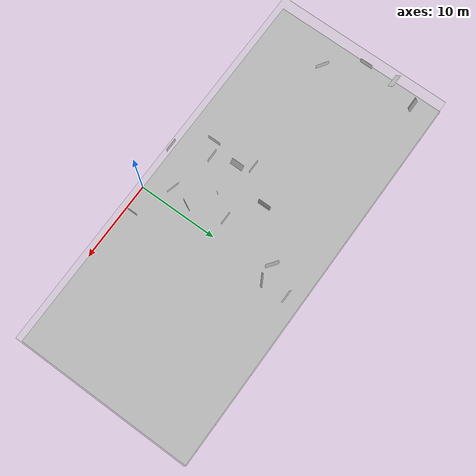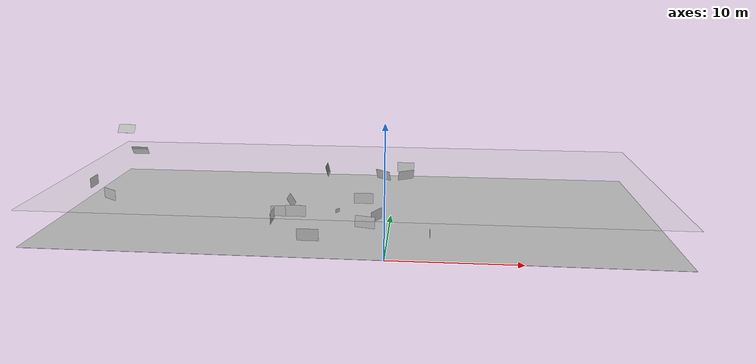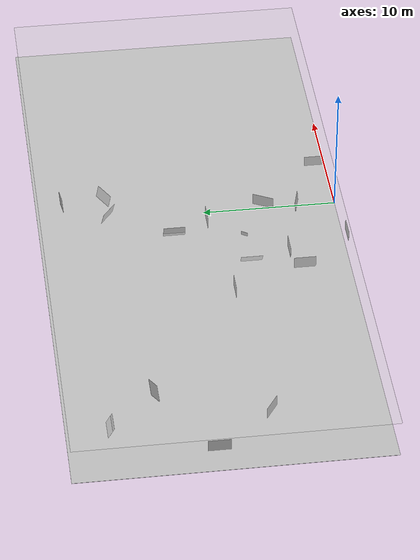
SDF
<sdf version="1.6">
 <world name="default">
  <model name="ceiling">
   <pose>-2.97 11.25 3 3.14159 -0 3.14159</pose>
   <static>1</static>
   <link name="link">
    <visual name="visual">
     <geometry><plane><normal>0 0 1</normal><size>49.5 22.5</size></plane></geometry>
     <material>
      <script>
       <uri>file://media/materials/scripts/</uri>
       <uri>file://media/materials/textures/</uri>
       <name>ServiceSim/Ceiling</name>
      </script>
     </material>
    </visual>
   </link>
  </model>
  <model name="floor">
   <pose>-2.97 11.25 -0.001 0 -0 0</pose>
   <static>1</static>
   <link name="link">
    <collision name="collision">
     <geometry><plane><normal>0 0 1</normal><size>49.5 22.5</size></plane></geometry>
     <surface><friction><ode><mu>1</mu><mu2>1</mu2></ode></friction></surface>
    </collision>
    <visual name="visual">
     <geometry><plane><normal>0 0 1</normal><size>49.5 22.5</size></plane></geometry>
     <material>
      <script>
       <uri>file://media/materials/scripts/</uri>
       <uri>file://media/materials/textures/</uri>
       <name>ServiceSim/Hallway</name>
      </script>
     </material>
    </visual>
   </link>
  </model>
  <model name="slide-0">
   <pose>-1.666 3.158 1.31893 -0.0921 -0 -0.2639</pose>
   <static>1</static>
   <link name="link">
    <pose>0 0 0.45 0 -0 0</pose>
    <visual name="visual">
     <geometry><box><size>1.6 0.005 0.9</size></box></geometry>
     <material>
      <script>
       <uri>file://media/materials/scripts/</uri>
       <uri>file://media/materials/textures/</uri>
       <name>Slides/slide_0</name>
      </script>
     </material>
    </visual>
   </link>
  </model>
  <model name="slide-1">
   <pose>-7.17951 4.58217 1.57931 0 -0 0</pose>
   <static>1</static>
   <link name="link">
    <pose>0 0 0.45 0 -0 0</pose>
    <visual name="visual">
     <geometry><box><size>1.6 0.005 0.9</size></box></geometry>
     <material>
      <script>
       <uri>file://media/materials/scripts/</uri>
       <uri>file://media/materials/textures/</uri>
       <name>Slides/slide_1</name>
      </script>
     </material>
    </visual>
   </link>
  </model>
  <model name="slide-2">
   <pose>-8.84423 3.66479 1.425 0 -0 1.5708</pose>
   <static>1</static>
   <link name="link">
    <pose>0 0 0.45 0 -0 0</pose>
    <visual name="visual">
     <geometry><box><size>1.6 0.005 0.9</size></box></geometry>
     <material>
      <script>
       <uri>file://media/materials/scripts/</uri>
       <uri>file://media/materials/textures/</uri>
       <name>Slides/slide_2</name>
      </script>
     </material>
    </visual>
   </link>
  </model>
  <model name="slide-3">
   <pose>-5.53 0.01 1.34 0 0 3.14</pose>
   <static>1</static>
   <link name="link">
    <pose>0 0 0.45 0 -0 0</pose>
    <visual name="visual">
     <geometry><box><size>1.6 0.005 0.9</size></box></geometry>
     <material>
      <script>
       <uri>file://media/materials/scripts/</uri>
       <uri>file://media/materials/textures/</uri>
       <name>Slides/slide_3</name>
      </script>
     </material>
    </visual>
   </link>
  </model>
  <model name="slide-4">
   <pose>3.2438 1.11 1.23456 0 0 1.570796</pose>
   <static>1</static>
   <link name="link">
    <pose>0 0 0.405 0 -0 0</pose>
    <visual name="visual">
     <geometry><box><size>1.44 0.005 0.81</size></box></geometry>
     <material>
      <script>
       <uri>file://media/materials/scripts/</uri>
       <uri>file://media/materials/textures/</uri>
       <name>Slides/slide_4</name>
      </script>
     </material>
    </visual>
   </link>
  </model>
  <model name="slide-5">
   <pose>3.2438 1.11 1.23456 0 0 1.570796</pose>
   <static>1</static>
   <link name="link">
    <pose>0 0 0.405 0 -0 0</pose>
    <visual name="visual">
     <geometry><box><size>1.44 0.005 0.81</size></box></geometry>
     <material>
      <script>
       <uri>file://media/materials/scripts/</uri>
       <uri>file://media/materials/textures/</uri>
       <name>Slides/slide_5</name>
      </script>
     </material>
    </visual>
   </link>
  </model>
  <model name="slide-6">
   <pose>3.2438 1.11 1.23456 0 0 1.570796</pose>
   <static>1</static>
   <link name="link">
    <pose>0 0 0.405 0 -0 0</pose>
    <visual name="visual">
     <geometry><box><size>1.44 0.005 0.81</size></box></geometry>
     <material>
      <script>
       <uri>file://media/materials/scripts/</uri>
       <uri>file://media/materials/textures/</uri>
       <name>Slides/slide_6</name>
      </script>
     </material>
    </visual>
   </link>
  </model>
  <model name="slide-7">
   <pose>3.2438 1.11 1.23456 0 0 1.570796</pose>
   <static>1</static>
   <link name="link">
    <pose>0 0 0.405 0 -0 0</pose>
    <visual name="visual">
     <geometry><box><size>1.44 0.005 0.81</size></box></geometry>
     <material>
      <script>
       <uri>file://media/materials/scripts/</uri>
       <uri>file://media/materials/textures/</uri>
       <name>Slides/slide_7</name>
      </script>
     </material>
    </visual>
   </link>
  </model>
  <model name="slide-34">
   <pose>0.895 20.51 0.99 -0.25 0 0</pose>
   <static>1</static>
   <link name="link">
    <pose>0 0 0.45 0 -0 0</pose>
    <visual name="visual">
     <geometry><box><size>1.6 0.005 0.9</size></box></geometry>
     <material>
      <script>
       <uri>file://media/materials/scripts/</uri>
       <uri>file://media/materials/textures/</uri>
       <name>Slides/slide_34</name>
      </script>
     </material>
    </visual>
   </link>
  </model>
  <model name="slide-35">
   <pose>0.978 17.519 1.09 -0.25 0 -2.63</pose>
   <static>1</static>
   <link name="link">
    <pose>0 0 0.45 0 -0 0</pose>
    <visual name="visual">
     <geometry><box><size>1.6 0.005 0.9</size></box></geometry>
     <material>
      <script>
       <uri>file://media/materials/scripts/</uri>
       <uri>file://media/materials/textures/</uri>
       <name>Slides/slide_35</name>
      </script>
     </material>
    </visual>
   </link>
  </model>
  <model name="slide-36">
   <pose>-1.02 17.387 1.098 -0.257 0 2.51</pose>
   <static>1</static>
   <link name="link">
    <pose>0 0 0.45 0 -0 0</pose>
    <visual name="visual">
     <geometry><box><size>1.6 0.005 0.9</size></box></geometry>
     <material>
      <script>
       <uri>file://media/materials/scripts/</uri>
       <uri>file://media/materials/textures/</uri>
       <name>Slides/slide_36</name>
      </script>
     </material>
    </visual>
   </link>
  </model>
  <model name="slide-37">
   <pose>-5.6 12.866 2.69 -0.25 0 1.57</pose>
   <static>1</static>
   <link name="link">
    <pose>0 0 0.45 0 -0 0</pose>
    <visual name="visual">
     <geometry><box><size>1.6 0.005 0.9</size></box></geometry>
     <material>
      <script>
       <uri>file://media/materials/scripts/</uri>
       <uri>file://media/materials/textures/</uri>
       <name>Slides/slide_37</name>
      </script>
     </material>
    </visual>
   </link>
  </model>
  <model name="slide-38">
   <pose>-7.79 7.47 1.536 -0.55 0 1.57</pose>
   <static>1</static>
   <link name="link">
    <pose>0 0 0.45 0 -0 0</pose>
    <visual name="visual">
     <geometry><box><size>1.6 0.005 0.9</size></box></geometry>
     <material>
      <script>
       <uri>file://media/materials/scripts/</uri>
       <uri>file://media/materials/textures/</uri>
       <name>Slides/slide_38</name>
      </script>
     </material>
    </visual>
   </link>
  </model>
  <model name="slide-39">
   <pose>-9.29 8.86 0.08 0 0 3.14</pose>
   <static>1</static>
   <link name="link">
    <pose>0 0 0.45 0 -0 0</pose>
    <visual name="visual">
     <geometry><box><size>1.6 0.005 0.9</size></box></geometry>
     <material>
      <script>
       <uri>file://media/materials/scripts/</uri>
       <uri>file://media/materials/textures/</uri>
       <name>Slides/slide_39</name>
      </script>
     </material>
    </visual>
   </link>
  </model>
  <model name="slide-40">
   <pose>-23.76 8.29 1.33 0 0 2.55</pose>
   <static>1</static>
   <link name="link">
    <pose>0 0 0.45 0 -0 0</pose>
    <visual name="visual">
     <geometry><box><size>1.6 0.005 0.9</size></box></geometry>
     <material>
      <script>
       <uri>file://media/materials/scripts/</uri>
       <uri>file://media/materials/textures/</uri>
       <name>Slides/slide_40</name>
      </script>
     </material>
    </visual>
   </link>
  </model>
  <model name="slide-41">
   <pose>-23.76 8.29 1.33 0 0 2.55</pose>
   <static>1</static>
   <link name="link">
    <pose>0 0 0.45 0 -0 0</pose>
    <visual name="visual">
     <geometry><box><size>1.6 0.005 0.9</size></box></geometry>
     <material>
      <script>
       <uri>file://media/materials/scripts/</uri>
       <uri>file://media/materials/textures/</uri>
       <name>Slides/slide_41</name>
      </script>
     </material>
    </visual>
   </link>
  </model>
  <model name="slide-42">
   <pose>-23.76 8.29 1.33 0 0 2.55</pose>
   <static>1</static>
   <link name="link">
    <pose>0 0 0.45 0 -0 0</pose>
    <visual name="visual">
     <geometry><box><size>1.6 0.005 0.9</size></box></geometry>
     <material>
      <script>
       <uri>file://media/materials/scripts/</uri>
       <uri>file://media/materials/textures/</uri>
       <name>Slides/slide_42</name>
      </script>
     </material>
    </visual>
   </link>
  </model>
  <model name="slide-43">
   <pose>-23.76 8.29 1.33 0 0 2.55</pose>
   <static>1</static>
   <link name="link">
    <pose>0 0 0.45 0 -0 0</pose>
    <visual name="visual">
     <geometry><box><size>1.6 0.005 0.9</size></box></geometry>
     <material>
      <script>
       <uri>file://media/materials/scripts/</uri>
       <uri>file://media/materials/textures/</uri>
       <name>Slides/slide_43</name>
      </script>
     </material>
    </visual>
   </link>
  </model>
  <model name="slide-44">
   <pose>-26.94 12.32 1.2 0 0 1.57</pose>
   <static>1</static>
   <link name="link">
    <pose>0 0 0.45 0 -0 0</pose>
    <visual name="visual">
     <geometry><box><size>1.6 0.005 0.9</size></box></geometry>
     <material>
      <script>
       <uri>file://media/materials/scripts/</uri>
       <uri>file://media/materials/textures/</uri>
       <name>Slides/slide_44</name>
      </script>
     </material>
    </visual>
   </link>
  </model>
  <model name="slide-46">
   <pose>-25.33 19.81 2.38 -0.51 0 -3.14</pose>
   <static>1</static>
   <link name="link">
    <pose>0 0 0.45 0 -0 0</pose>
    <visual name="visual">
     <geometry><box><size>1.6 0.005 0.9</size></box></geometry>
     <material>
      <script>
       <uri>file://media/materials/scripts/</uri>
       <uri>file://media/materials/textures/</uri>
       <name>Slides/slide_46</name>
      </script>
     </material>
    </visual>
   </link>
  </model>
  <model name="slide-47">
   <pose>-25.266 16.29 5.26 0.685 0 -3.14</pose>
   <static>1</static>
   <link name="link">
    <pose>0 0 0.45 0 -0 0</pose>
    <visual name="visual">
     <geometry><box><size>1.6 0.005 0.9</size></box></geometry>
     <material>
      <script>
       <uri>file://media/materials/scripts/</uri>
       <uri>file://media/materials/textures/</uri>
       <name>Slides/slide_47</name>
      </script>
     </material>
    </visual>
   </link>
  </model>
  <model name="slide-49">
   <pose>-0.95 5.62 1.029 0 0 -2.045</pose>
   <static>1</static>
   <link name="link">
    <pose>0 0 0.45 0 -0 0</pose>
    <visual name="visual">
     <geometry><box><size>1.6 0.005 0.9</size></box></geometry>
     <material>
      <script>
       <uri>file://media/materials/scripts/</uri>
       <uri>file://media/materials/textures/</uri>
       <name>Slides/slide_49</name>
      </script>
     </material>
    </visual>
   </link>
  </model>
  <model name="slide-50">
   <pose>-2.319 10.04 1.02 0 0 0</pose>
   <static>1</static>
   <link name="link">
    <pose>0 0 0.45 0 -0 0</pose>
    <visual name="visual">
     <geometry><box><size>1.6 0.005 0.9</size></box></geometry>
     <material>
      <script>
       <uri>file://media/materials/scripts/</uri>
       <uri>file://media/materials/textures/</uri>
       <name>Slides/slide_50</name>
      </script>
     </material>
    </visual>
   </link>
  </model>
  <model name="slide-51">
   <pose>-4.233 7.47 1.029 0 0 0.97</pose>
   <static>1</static>
   <link name="link">
    <pose>0 0 0.15 0 -0 0</pose>
    <visual name="visual">
     <geometry><box><size>0.53 0.005 0.3</size></box></geometry>
     <material>
      <script>
       <uri>file://media/materials/scripts/</uri>
       <uri>file://media/materials/textures/</uri>
       <name>Slides/slide_51</name>
      </script>
     </material>
    </visual>
   </link>
  </model>
 </world>
</sdf>
